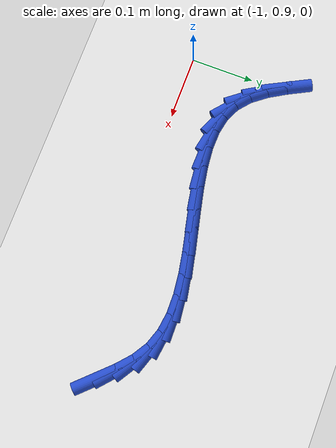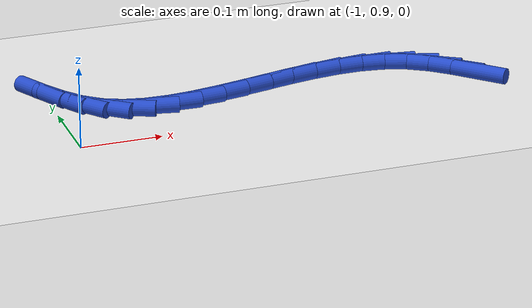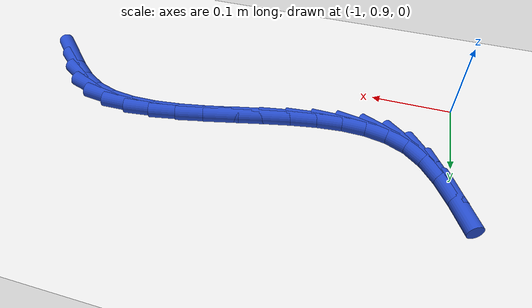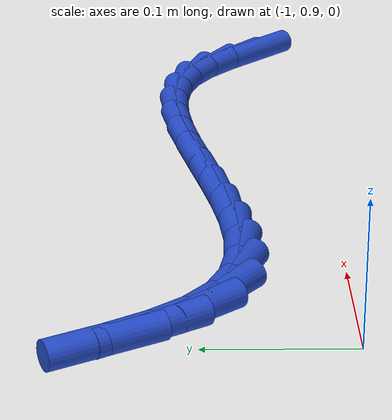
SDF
<sdf version="1.6">
 <world name="default">
  <model name="ground_plane">
   <static>1</static>
   <link name="link">
    <collision name="collision">
     <geometry><plane><normal>0 0 1</normal><size>100 100</size></plane></geometry>
     <surface><friction><ode><mu>100</mu><mu2>50</mu2></ode></friction></surface>
    </collision>
    <visual name="visual">
     <cast_shadows>0</cast_shadows>
     <geometry><plane><normal>0 0 1</normal><size>100 100</size></plane></geometry>
     <material>
      <script><uri>file://media/materials/scripts/gazebo.material</uri><name>Gazebo/WhiteGlow</name></script>
     </material>
    </visual>
   </link>
  </model>
  <model name="line">
   <link name="link_36">
    <pose>-0.4787085601250067 0.9424609428878555 0.01 0 1.57 -0.8065885261360701</pose>
    <collision name="collision">
     <geometry><cylinder><radius>0.01</radius><length>0.08</length></cylinder></geometry>
    </collision>
    <visual name="visual">
     <material>
      <script><name>Gazebo/Blue</name><uri>file://media/materials/scripts/gazebo.material</uri></script>
     </material>
     <geometry><cylinder><radius>0.01</radius><length>0.08</length></cylinder></geometry>
    </visual>
   </link>
   <link name="link_37">
    <pose>-0.5004796161615563 0.9651747913048776 0.01 0 1.57 -0.7239396289864225</pose>
    <collision name="collision">
     <geometry><cylinder><radius>0.01</radius><length>0.08</length></cylinder></geometry>
    </collision>
    <visual name="visual">
     <material>
      <script><name>Gazebo/Blue</name><uri>file://media/materials/scripts/gazebo.material</uri></script>
     </material>
     <geometry><cylinder><radius>0.01</radius><length>0.08</length></cylinder></geometry>
    </visual>
   </link>
   <link name="link_38">
    <pose>-0.5231704281639824 0.9852348824126399 0.01 0 1.57 -0.5575394265091913</pose>
    <collision name="collision">
     <geometry><cylinder><radius>0.01</radius><length>0.08</length></cylinder></geometry>
    </collision>
    <visual name="visual">
     <material>
      <script><name>Gazebo/Blue</name><uri>file://media/materials/scripts/gazebo.material</uri></script>
     </material>
     <geometry><cylinder><radius>0.01</radius><length>0.08</length></cylinder></geometry>
    </visual>
   </link>
   <link name="link_39">
    <pose>-0.5478020891732953 1.0005933897633656 0.01 0 1.57 -0.3286391392292028</pose>
    <collision name="collision">
     <geometry><cylinder><radius>0.01</radius><length>0.08</length></cylinder></geometry>
    </collision>
    <visual name="visual">
     <material>
      <script><name>Gazebo/Blue</name><uri>file://media/materials/scripts/gazebo.material</uri></script>
     </material>
     <geometry><cylinder><radius>0.01</radius><length>0.08</length></cylinder></geometry>
    </visual>
   </link>
   <link name="link_40">
    <pose>-0.5750607330315112 1.0098887250731357 0.01 0 1.57 -0.13031589210065933</pose>
    <collision name="collision">
     <geometry><cylinder><radius>0.01</radius><length>0.08</length></cylinder></geometry>
    </collision>
    <visual name="visual">
     <material>
      <script><name>Gazebo/Blue</name><uri>file://media/materials/scripts/gazebo.material</uri></script>
     </material>
     <geometry><cylinder><radius>0.01</radius><length>0.08</length></cylinder></geometry>
    </visual>
   </link>
   <link name="link_41">
    <pose>-0.6046525242370745 1.0137669844714943 0.01 0 1.57 0.016769471340675447</pose>
    <collision name="collision">
     <geometry><cylinder><radius>0.01</radius><length>0.08</length></cylinder></geometry>
    </collision>
    <visual name="visual">
     <material>
      <script><name>Gazebo/Blue</name><uri>file://media/materials/scripts/gazebo.material</uri></script>
     </material>
     <geometry><cylinder><radius>0.01</radius><length>0.08</length></cylinder></geometry>
    </visual>
   </link>
   <link name="link_42">
    <pose>-0.6361053583000896 1.0132394876244595 0.01 0 1.57 0.11885618852034543</pose>
    <collision name="collision">
     <geometry><cylinder><radius>0.01</radius><length>0.08</length></cylinder></geometry>
    </collision>
    <visual name="visual">
     <material>
      <script><name>Gazebo/Blue</name><uri>file://media/materials/scripts/gazebo.material</uri></script>
     </material>
     <geometry><cylinder><radius>0.01</radius><length>0.08</length></cylinder></geometry>
    </visual>
   </link>
   <link name="link_43">
    <pose>-0.6689471307306605 1.0093175541980492 0.01 0 1.57 0.18464137382621498</pose>
    <collision name="collision">
     <geometry><cylinder><radius>0.01</radius><length>0.08</length></cylinder></geometry>
    </collision>
    <visual name="visual">
     <material>
      <script><name>Gazebo/Blue</name><uri>file://media/materials/scripts/gazebo.material</uri></script>
     </material>
     <geometry><cylinder><radius>0.01</radius><length>0.08</length></cylinder></geometry>
    </visual>
   </link>
   <link name="link_44">
    <pose>-0.702705737038891 1.0030125038582813 0.01 0 1.57 0.22078834679530712</pose>
    <collision name="collision">
     <geometry><cylinder><radius>0.01</radius><length>0.08</length></cylinder></geometry>
    </collision>
    <visual name="visual">
     <material>
      <script><name>Gazebo/Blue</name><uri>file://media/materials/scripts/gazebo.material</uri></script>
     </material>
     <geometry><cylinder><radius>0.01</radius><length>0.08</length></cylinder></geometry>
    </visual>
   </link>
   <link name="link_45">
    <pose>-0.7369090727348862 0.995335656271175 0.01 0 1.57 0.23097761888623183</pose>
    <collision name="collision">
     <geometry><cylinder><radius>0.01</radius><length>0.08</length></cylinder></geometry>
    </collision>
    <visual name="visual">
     <material>
      <script><name>Gazebo/Blue</name><uri>file://media/materials/scripts/gazebo.material</uri></script>
     </material>
     <geometry><cylinder><radius>0.01</radius><length>0.08</length></cylinder></geometry>
    </visual>
   </link>
   <link name="link_46">
    <pose>-0.7710850333287492 0.9872983311027479 0.01 0 1.57 0.2159173933694123</pose>
    <collision name="collision">
     <geometry><cylinder><radius>0.01</radius><length>0.08</length></cylinder></geometry>
    </collision>
    <visual name="visual">
     <material>
      <script><name>Gazebo/Blue</name><uri>file://media/materials/scripts/gazebo.material</uri></script>
     </material>
     <geometry><cylinder><radius>0.01</radius><length>0.08</length></cylinder></geometry>
    </visual>
   </link>
   <link name="link_47">
    <pose>-0.8047615143305851 0.9799118480190182 0.01 0 1.57 0.1732742771846421</pose>
    <collision name="collision">
     <geometry><cylinder><radius>0.01</radius><length>0.08</length></cylinder></geometry>
    </collision>
    <visual name="visual">
     <material>
      <script><name>Gazebo/Blue</name><uri>file://media/materials/scripts/gazebo.material</uri></script>
     </material>
     <geometry><cylinder><radius>0.01</radius><length>0.08</length></cylinder></geometry>
    </visual>
   </link>
   <link name="link_48">
    <pose>-0.8374664112504975 0.974187526686004 0.01 0 1.57 0.09728380554751538</pose>
    <collision name="collision">
     <geometry><cylinder><radius>0.01</radius><length>0.08</length></cylinder></geometry>
    </collision>
    <visual name="visual">
     <material>
      <script><name>Gazebo/Blue</name><uri>file://media/materials/scripts/gazebo.material</uri></script>
     </material>
     <geometry><cylinder><radius>0.01</radius><length>0.08</length></cylinder></geometry>
    </visual>
   </link>
   <link name="link_49">
    <pose>-0.8687276195985902 0.9711366867697233 0.01 0 1.57 -0.02160005449167211</pose>
    <collision name="collision">
     <geometry><cylinder><radius>0.01</radius><length>0.08</length></cylinder></geometry>
    </collision>
    <visual name="visual">
     <material>
      <script><name>Gazebo/Blue</name><uri>file://media/materials/scripts/gazebo.material</uri></script>
     </material>
     <geometry><cylinder><radius>0.01</radius><length>0.08</length></cylinder></geometry>
    </visual>
   </link>
   <link name="link_50">
    <pose>-0.8980730348849685 0.9717706479361947 0.01 0 1.57 -0.19520377586221402</pose>
    <collision name="collision">
     <geometry><cylinder><radius>0.01</radius><length>0.08</length></cylinder></geometry>
    </collision>
    <visual name="visual">
     <material>
      <script><name>Gazebo/Blue</name><uri>file://media/materials/scripts/gazebo.material</uri></script>
     </material>
     <geometry><cylinder><radius>0.01</radius><length>0.08</length></cylinder></geometry>
    </visual>
   </link>
   <link name="link_51">
    <pose>-0.9250305526197355 0.977100729851436 0.01 0 1.57 -0.42951628276426856</pose>
    <collision name="collision">
     <geometry><cylinder><radius>0.01</radius><length>0.08</length></cylinder></geometry>
    </collision>
    <visual name="visual">
     <material>
      <script><name>Gazebo/Blue</name><uri>file://media/materials/scripts/gazebo.material</uri></script>
     </material>
     <geometry><cylinder><radius>0.01</radius><length>0.08</length></cylinder></geometry>
    </visual>
   </link>
   <link name="link_52">
    <pose>-0.9491280683129961 0.9881382521814659 0.01 0 1.57 -0.7008071572866809</pose>
    <collision name="collision">
     <geometry><cylinder><radius>0.01</radius><length>0.08</length></cylinder></geometry>
    </collision>
    <visual name="visual">
     <material>
      <script><name>Gazebo/Blue</name><uri>file://media/materials/scripts/gazebo.material</uri></script>
     </material>
     <geometry><cylinder><radius>0.01</radius><length>0.08</length></cylinder></geometry>
    </visual>
   </link>
   <link name="link_53">
    <pose>-0.9699751602771564 1.005726299793805 0.01 0 1.57 -0.9122067546751638</pose>
    <collision name="collision">
     <geometry><cylinder><radius>0.01</radius><length>0.08</length></cylinder></geometry>
    </collision>
    <visual name="visual">
     <material>
      <script><name>Gazebo/Blue</name><uri>file://media/materials/scripts/gazebo.material</uri></script>
     </material>
     <geometry><cylinder><radius>0.01</radius><length>0.08</length></cylinder></geometry>
    </visual>
   </link>
   <link name="link_54">
    <pose>-0.9880009473295859 1.0290200229133375 0.01 0 1.57 -1.035854640714874</pose>
    <collision name="collision">
     <geometry><cylinder><radius>0.01</radius><length>0.08</length></cylinder></geometry>
    </collision>
    <visual name="visual">
     <material>
      <script><name>Gazebo/Blue</name><uri>file://media/materials/scripts/gazebo.material</uri></script>
     </material>
     <geometry><cylinder><radius>0.01</radius><length>0.08</length></cylinder></geometry>
    </visual>
   </link>
   <link name="link_55">
    <pose>-1.0041074506242116 1.0562005769085399 0.01 0 1.57 -1.0941936350383803</pose>
    <collision name="collision">
     <geometry><cylinder><radius>0.01</radius><length>0.08</length></cylinder></geometry>
    </collision>
    <visual name="visual">
     <material>
      <script><name>Gazebo/Blue</name><uri>file://media/materials/scripts/gazebo.material</uri></script>
     </material>
     <geometry><cylinder><radius>0.01</radius><length>0.08</length></cylinder></geometry>
    </visual>
   </link>
  </model>
 </world>
</sdf>
